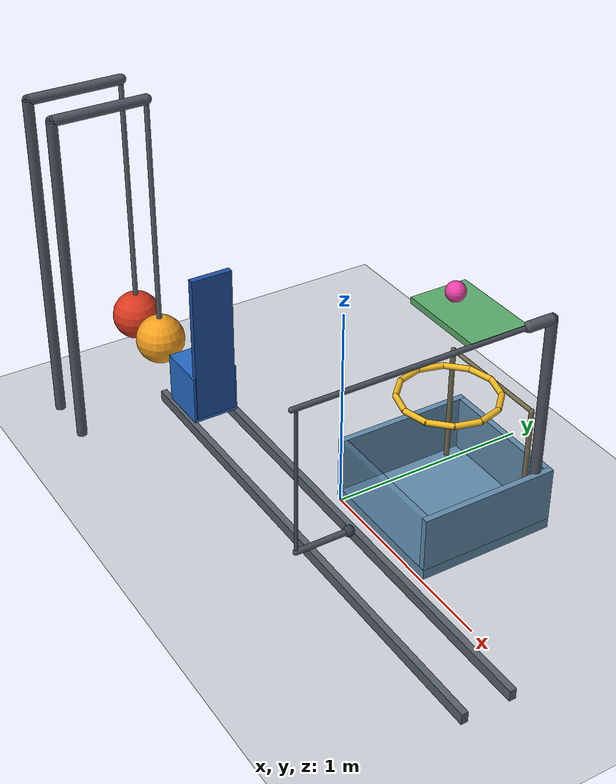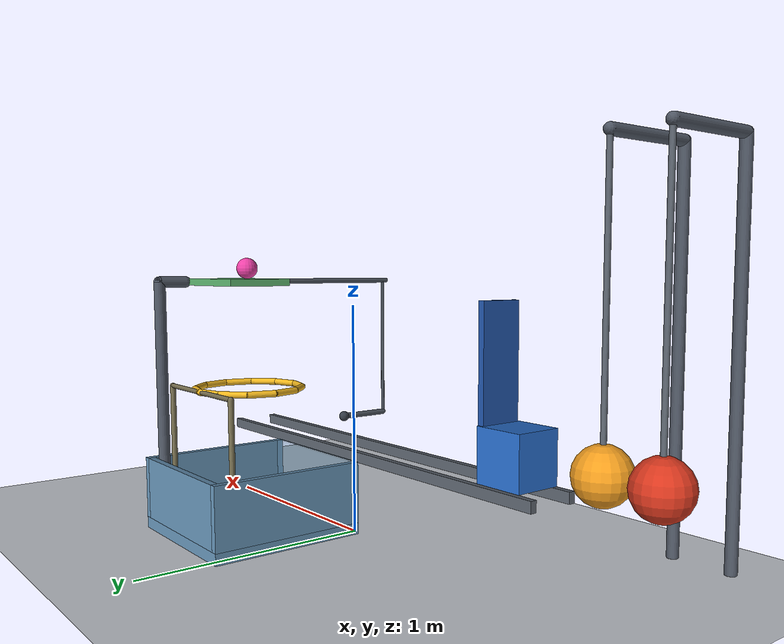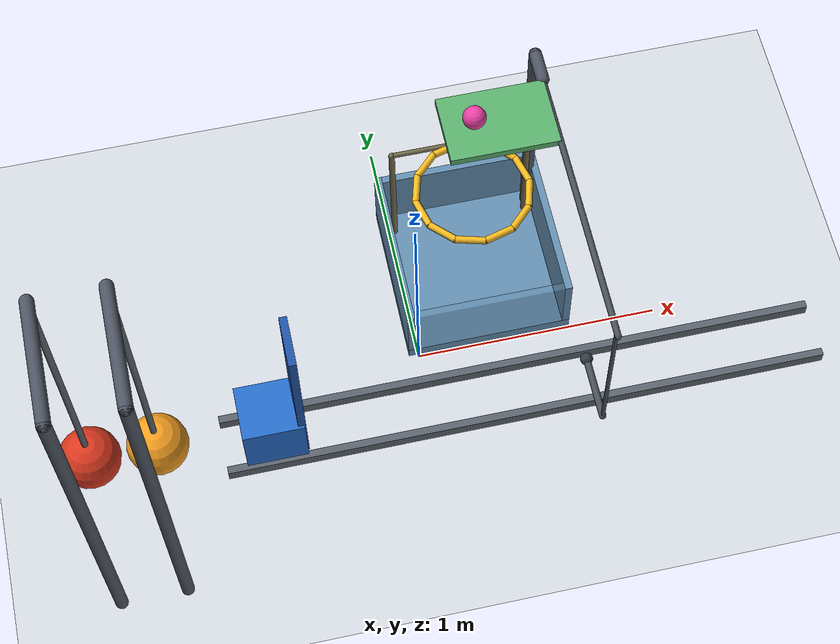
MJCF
<mujoco model="pendulum_cart_ball_release">
  <compiler angle="radian" autolimits="true"/>
  <option timestep="0.002" gravity="0 0 -9.81" integrator="implicitfast" solver="Newton" iterations="100" tolerance="1e-10"/>

  <visual>
    <global azimuth="120" elevation="-20"/>
    <headlight ambient="0.35 0.35 0.35" diffuse="0.65 0.65 0.65" specular="0.2 0.2 0.2"/>
  </visual>

  <worldbody>
    <light name="overhead" pos="-1 -2 5" dir="0.2 0.3 -1" directional="true"/>
    <camera name="overview" pos="-0.45 -5 2.8" xyaxes="1 0 0 0 0.4 0.916515" fovy="55"/>

    <geom name="floor" type="plane" pos="0 0 0" size="5 4 0.1" friction="0.8 0.01 0.002" rgba="0.82 0.84 0.87 1"/>

    <!-- Fixed bearing frame and prismatic guide. -->
    <body name="bearing_frame">
      <geom name="frame_post1" type="capsule" fromto="-1.35 -0.8 0 -1.35 -0.8 1.65" size="0.025" contype="0" conaffinity="0" rgba="0.3 0.33 0.38 1"/>
      <geom name="frame_post2" type="capsule" fromto="-1.09 -0.8 0 -1.09 -0.8 1.65" size="0.025" contype="0" conaffinity="0" rgba="0.3 0.33 0.38 1"/>
      <geom name="frame_bearing1" type="capsule" fromto="-1.35 -0.8 1.65 -1.35 -0.35 1.65" size="0.025" contype="0" conaffinity="0" rgba="0.3 0.33 0.38 1"/>
      <geom name="frame_bearing2" type="capsule" fromto="-1.09 -0.8 1.65 -1.09 -0.35 1.65" size="0.025" contype="0" conaffinity="0" rgba="0.3 0.33 0.38 1"/>
    </body>

    <body name="cart_guide">
      <geom name="guide_rail1" type="box" pos="0.35 -0.46 0.25" size="1.2 0.015 0.025" contype="0" conaffinity="0" rgba="0.35 0.38 0.42 1"/>
      <geom name="guide_rail2" type="box" pos="0.35 -0.24 0.25" size="1.2 0.015 0.025" contype="0" conaffinity="0" rgba="0.35 0.38 0.42 1"/>
    </body>

    <!-- L = 1.25 m and cos(start angle) = 0.44:
         the bob starts exactly 0.7 m above its lowest position. -->
    <body name="pend1" pos="-1.35 -0.35 1.65">
      <joint name="pend1_hinge" type="hinge" axis="0 1 0" damping="0.015" frictionloss="0.003"/>
      <geom name="pend1_rod" type="capsule" fromto="0 0 0 0 0 -1.25" size="0.012" mass="0" contype="0" conaffinity="0" rgba="0.35 0.38 0.42 1"/>
      <geom name="pend1_bob" type="sphere" pos="0 0 -1.25" size="0.12" mass="2.5" friction="0.12 0.001 0.0001" solref="0.010 0.4" solimp="0.95 0.99 0.001" rgba="0.85 0.22 0.12 1"/>
    </body>

    <body name="pend2" pos="-1.09 -0.35 1.65">
      <joint name="pend2_hinge" type="hinge" axis="0 1 0" damping="0.015" frictionloss="0.003"/>
      <geom name="pend2_rod" type="capsule" fromto="0 0 0 0 0 -1.25" size="0.012" mass="0" contype="0" conaffinity="0" rgba="0.35 0.38 0.42 1"/>
      <geom name="pend2_bob" type="sphere" pos="0 0 -1.25" size="0.12" mass="1.6" friction="0.12 0.001 0.0001" solref="0.010 0.4" solimp="0.95 0.99 0.001" rgba="0.95 0.62 0.12 1"/>
    </body>

    <body name="cart" pos="-0.65 -0.35 0.4">
      <joint name="cart_slide" type="slide" axis="1 0 0" range="0 1.9" damping="0.03" frictionloss="0.16" solreflimit="0.008 1"/>
      <geom name="cart_base" type="box" size="0.12 0.11 0.12" mass="0.5" friction="0.12 0.001 0.0001" solref="0.010 0.4" solimp="0.95 0.99 0.001" rgba="0.15 0.42 0.78 1"/>
      <geom name="cart_pusher" type="box" pos="0.11 0 0.265" size="0.015 0.1 0.365" mass="0.15" friction="0.08 0.001 0.0001" solref="0.010 1" solimp="0.95 0.99 0.001" rgba="0.12 0.32 0.64 1"/>
    </body>

    <body name="flap_support">
      <geom name="flap_support_post" type="capsule" fromto="0.6 0.62 0 0.6 0.62 1.1" size="0.025" contype="0" conaffinity="0" rgba="0.3 0.33 0.38 1"/>
      <geom name="flap_support_bearing" type="capsule" fromto="0.6 0.62 1.1 0.6 0.5 1.1" size="0.025" contype="0" conaffinity="0" rgba="0.3 0.33 0.38 1"/>
    </body>

    <!-- Hinge friction holds the loaded flap shut.
         The crank is offset sideways from the ball's drop path. -->
    <body name="flap" pos="0.6 0 1.1">
      <joint name="flap_hinge" type="hinge" axis="0 1 0" range="-1.4 0" frictionloss="0.42" damping="0.02" armature="0.0005" solreflimit="0.008 1" solimplimit="0.99 0.999 0.001" solreffriction="0.008 1"/>
      <geom name="flap_plate" type="box" pos="-0.21 0.35 0" size="0.21 0.14 0.015" mass="0.09" friction="0.35 0.005 0.001" solref="0.012 1" solimp="0.95 0.99 0.001" rgba="0.35 0.68 0.42 1"/>
      <geom name="flap_shaft" type="capsule" fromto="0 -0.62 0 0 0.52 0" size="0.012" mass="0.015" friction="0.1 0.001 0.0001" rgba="0.28 0.31 0.35 1"/>
      <geom name="flap_crank_arm" type="capsule" fromto="0 -0.6 0 0 -0.6 -0.7" size="0.008" mass="0.006" friction="0.08 0.001 0.0001" solref="0.010 1" rgba="0.28 0.31 0.35 1"/>
      <geom name="flap_crank_crossbar" type="capsule" fromto="0 -0.6 -0.7 0 -0.35 -0.7" size="0.014" mass="0.006" friction="0.08 0.001 0.0001" solref="0.010 1" solimp="0.95 0.99 0.001" rgba="0.28 0.31 0.35 1"/>
      <geom name="flap_crank_tip" type="sphere" pos="0 -0.35 -0.7" size="0.025" mass="0.008" friction="0.08 0.001 0.0001" solref="0.010 1" solimp="0.95 0.99 0.001" rgba="0.2 0.23 0.27 1"/>
    </body>

    <body name="ball" pos="0.3 0.35 1.16">
      <freejoint name="ball_free"/>
      <geom name="ball_sphere" type="sphere" size="0.045" mass="0.035" condim="6" friction="0.9 0.01 0.004" solref="0.012 1" solimp="0.95 0.99 0.001" rgba="0.92 0.25 0.65 1"/>
    </body>

    <!-- A twelve-segment horizontal hoop, with an unobstructed opening. -->
    <body name="hoop" pos="0.3 0.35 0.64">
      <geom name="hoop_seg01" type="capsule" fromto="0.23 0 0 0.199186 0.115 0" size="0.014" friction="0.4 0.005 0.001" rgba="0.95 0.72 0.12 1"/>
      <geom name="hoop_seg02" type="capsule" fromto="0.199186 0.115 0 0.115 0.199186 0" size="0.014" friction="0.4 0.005 0.001" rgba="0.95 0.72 0.12 1"/>
      <geom name="hoop_seg03" type="capsule" fromto="0.115 0.199186 0 0 0.23 0" size="0.014" friction="0.4 0.005 0.001" rgba="0.95 0.72 0.12 1"/>
      <geom name="hoop_seg04" type="capsule" fromto="0 0.23 0 -0.115 0.199186 0" size="0.014" friction="0.4 0.005 0.001" rgba="0.95 0.72 0.12 1"/>
      <geom name="hoop_seg05" type="capsule" fromto="-0.115 0.199186 0 -0.199186 0.115 0" size="0.014" friction="0.4 0.005 0.001" rgba="0.95 0.72 0.12 1"/>
      <geom name="hoop_seg06" type="capsule" fromto="-0.199186 0.115 0 -0.23 0 0" size="0.014" friction="0.4 0.005 0.001" rgba="0.95 0.72 0.12 1"/>
      <geom name="hoop_seg07" type="capsule" fromto="-0.23 0 0 -0.199186 -0.115 0" size="0.014" friction="0.4 0.005 0.001" rgba="0.95 0.72 0.12 1"/>
      <geom name="hoop_seg08" type="capsule" fromto="-0.199186 -0.115 0 -0.115 -0.199186 0" size="0.014" friction="0.4 0.005 0.001" rgba="0.95 0.72 0.12 1"/>
      <geom name="hoop_seg09" type="capsule" fromto="-0.115 -0.199186 0 0 -0.23 0" size="0.014" friction="0.4 0.005 0.001" rgba="0.95 0.72 0.12 1"/>
      <geom name="hoop_seg10" type="capsule" fromto="0 -0.23 0 0.115 -0.199186 0" size="0.014" friction="0.4 0.005 0.001" rgba="0.95 0.72 0.12 1"/>
      <geom name="hoop_seg11" type="capsule" fromto="0.115 -0.199186 0 0.199186 -0.115 0" size="0.014" friction="0.4 0.005 0.001" rgba="0.95 0.72 0.12 1"/>
      <geom name="hoop_seg12" type="capsule" fromto="0.199186 -0.115 0 0.23 0 0" size="0.014" friction="0.4 0.005 0.001" rgba="0.95 0.72 0.12 1"/>
      <geom name="hoop_post_left" type="capsule" fromto="-0.28 0.23 -0.64 -0.28 0.23 0" size="0.012" rgba="0.45 0.42 0.3 1"/>
      <geom name="hoop_post_right" type="capsule" fromto="0.28 0.23 -0.64 0.28 0.23 0" size="0.012" rgba="0.45 0.42 0.3 1"/>
      <geom name="hoop_support_bar" type="capsule" fromto="-0.28 0.23 0 0.28 0.23 0" size="0.01" rgba="0.45 0.42 0.3 1"/>
    </body>

    <body name="box" pos="0.3 0.35 0">
      <geom name="box_bottom" type="box" pos="0 0 0.025" size="0.34 0.34 0.025" condim="6" friction="0.9 0.01 0.004" solref="0.012 1" solimp="0.95 0.99 0.001" rgba="0.38 0.55 0.68 1"/>
      <geom name="box_wall_left" type="box" pos="-0.325 0 0.185" size="0.015 0.34 0.135" condim="6" friction="0.9 0.01 0.004" solref="0.012 1" rgba="0.38 0.55 0.68 1"/>
      <geom name="box_wall_right" type="box" pos="0.325 0 0.185" size="0.015 0.34 0.135" condim="6" friction="0.9 0.01 0.004" solref="0.012 1" rgba="0.38 0.55 0.68 1"/>
      <geom name="box_wall_front" type="box" pos="0 -0.325 0.185" size="0.31 0.015 0.135" condim="6" friction="0.9 0.01 0.004" solref="0.012 1" rgba="0.38 0.55 0.68 0.45"/>
      <geom name="box_wall_back" type="box" pos="0 0.325 0.185" size="0.31 0.015 0.135" condim="6" friction="0.9 0.01 0.004" solref="0.012 1" rgba="0.38 0.55 0.68 1"/>
    </body>
  </worldbody>

  <keyframe>
    <key name="start" qpos="1.1151976533990733 0 0 0 0.3 0.35 1.16 1 0 0 0" qvel="0 0 0 0 0 0 0 0 0 0"/>
  </keyframe>
</mujoco>
